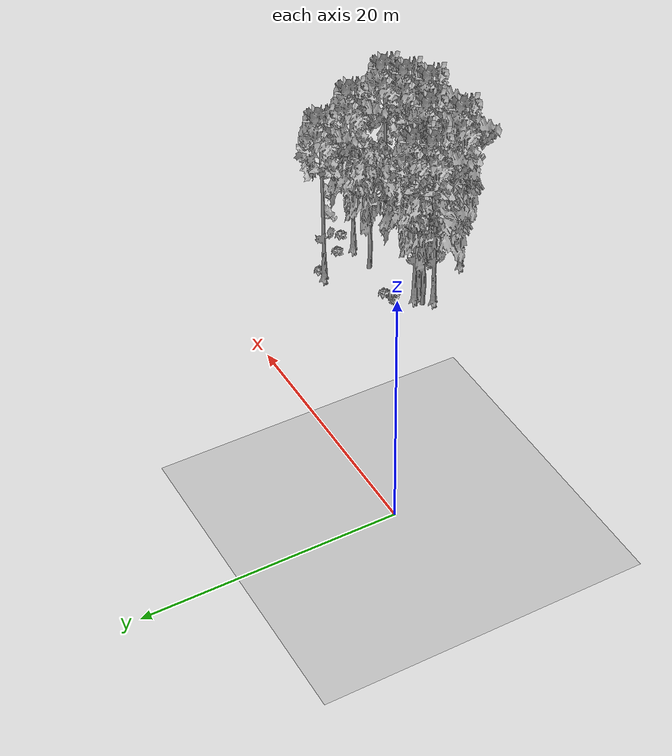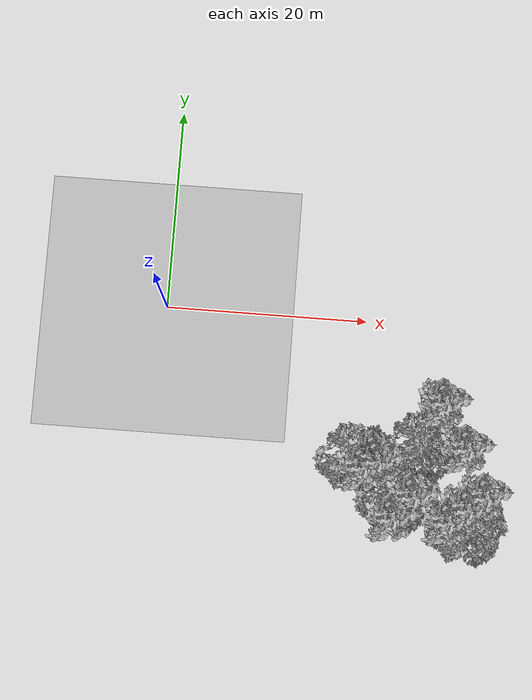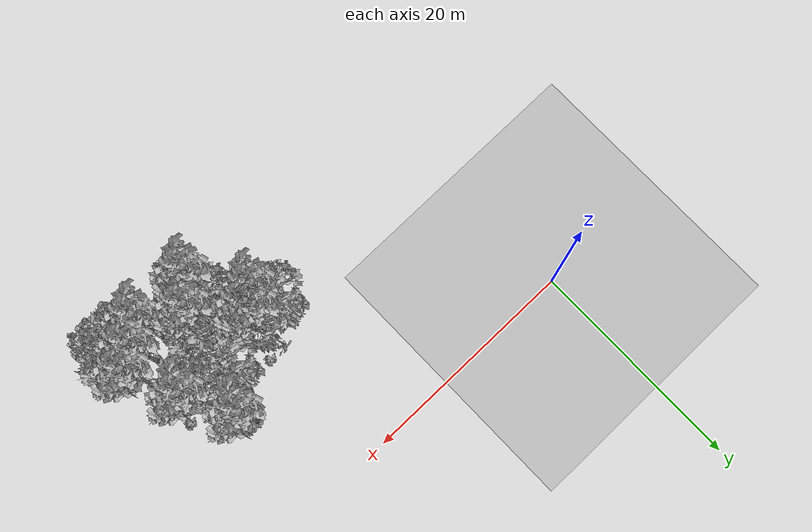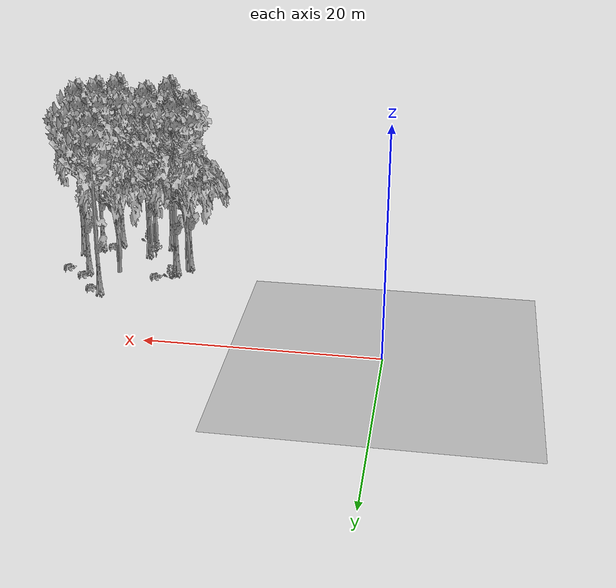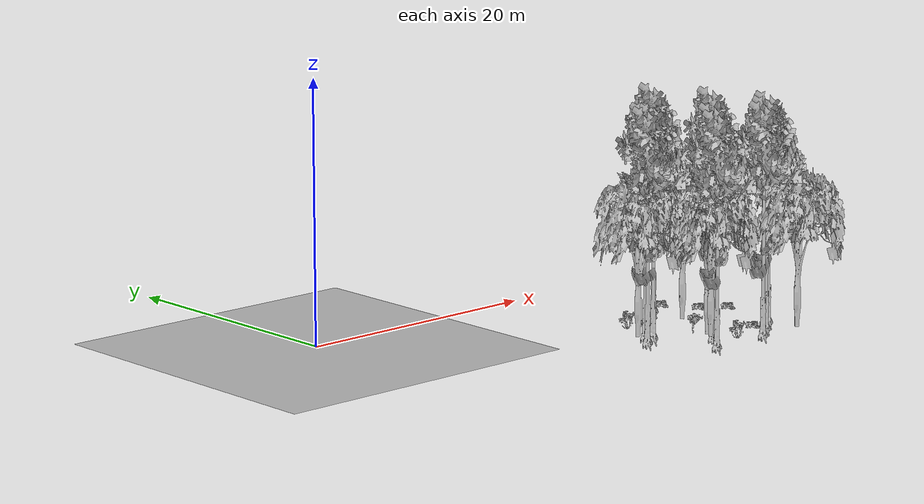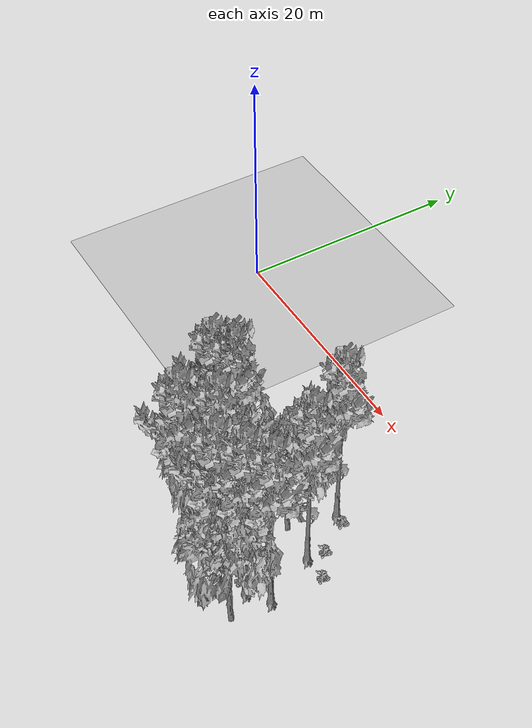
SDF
<sdf version="1.7">
 <world name="default">
  <model name="ground_plane">
   <static>1</static>
   <link name="link">
    <collision name="collision">
     <pose>-50 0 0 0 -0 0</pose>
     <geometry><plane><normal>0 0 1</normal><size>80 80</size></plane></geometry>
     <surface><contact><ode><min_depth>0.01</min_depth><max_vel>0</max_vel></ode></contact></surface>
    </collision>
    <visual name="grass">
     <cast_shadows>0</cast_shadows>
     <geometry>
      <mesh>
       <scale>0.46714285714285714 0.46714285714285714 0.1</scale>
       <uri>file://grass_plane/meshes/grass_plane.dae</uri>
      </mesh>
     </geometry>
    </visual>
   </link>
  </model>
  <model name="Tree 50">
   <static>1</static>
   <pose>23.375432868031204 -17.47456077057759 0 1.57079 -0 0</pose>
   <link name="link">
    <collision name="collision">
     <geometry><mesh><scale>3.5 5 3.5</scale><uri>model://tree_2/meshes/tree_2.obj</uri></mesh></geometry>
    </collision>
    <visual name="visual">
     <geometry><mesh><scale>3.5 5 3.5</scale><uri>model://tree_2/meshes/tree_2.obj</uri></mesh></geometry>
    </visual>
   </link>
  </model>
  <model name="Tree 141">
   <static>1</static>
   <pose>24.02685708414308 -17.16755280769504 0 1.57079 -0 0</pose>
   <link name="link">
    <collision name="collision">
     <geometry><mesh><scale>3.5 5 3.5</scale><uri>model://tree_9/meshes/tree_9.obj</uri></mesh></geometry>
    </collision>
    <visual name="visual">
     <geometry><mesh><scale>3.5 5 3.5</scale><uri>model://tree_9/meshes/tree_9.obj</uri></mesh></geometry>
    </visual>
   </link>
  </model>
  <model name="Tree 290">
   <static>1</static>
   <pose>20.408769202703468 -13.64539963736788 0 1.57079 -0 0</pose>
   <link name="link">
    <collision name="collision">
     <geometry><mesh><scale>3.5 5 3.5</scale><uri>model://tree_9/meshes/tree_9.obj</uri></mesh></geometry>
    </collision>
    <visual name="visual">
     <geometry><mesh><scale>3.5 5 3.5</scale><uri>model://tree_9/meshes/tree_9.obj</uri></mesh></geometry>
    </visual>
   </link>
  </model>
  <model name="Tree 294">
   <static>1</static>
   <pose>19.350011252296703 -13.890392780167417 0 1.57079 -0 0</pose>
   <link name="link">
    <collision name="collision">
     <geometry><mesh><scale>3.5 5 3.5</scale><uri>model://tree_2/meshes/tree_2.obj</uri></mesh></geometry>
    </collision>
    <visual name="visual">
     <geometry><mesh><scale>3.5 5 3.5</scale><uri>model://tree_2/meshes/tree_2.obj</uri></mesh></geometry>
    </visual>
   </link>
  </model>
  <model name="Tree 295">
   <static>1</static>
   <pose>26.437407888550965 -8.598830842433376 0 1.57079 -0 0</pose>
   <link name="link">
    <collision name="collision">
     <geometry><mesh><scale>3.5 5 3.5</scale><uri>model://tree_9/meshes/tree_9.obj</uri></mesh></geometry>
    </collision>
    <visual name="visual">
     <geometry><mesh><scale>3.5 5 3.5</scale><uri>model://tree_9/meshes/tree_9.obj</uri></mesh></geometry>
    </visual>
   </link>
  </model>
  <model name="Tree 299">
   <static>1</static>
   <pose>28.67347686791969 -12.583960751974317 0 1.57079 -0 0</pose>
   <link name="link">
    <collision name="collision">
     <geometry><mesh><scale>3.5 5 3.5</scale><uri>model://tree_9/meshes/tree_9.obj</uri></mesh></geometry>
    </collision>
    <visual name="visual">
     <geometry><mesh><scale>3.5 5 3.5</scale><uri>model://tree_9/meshes/tree_9.obj</uri></mesh></geometry>
    </visual>
   </link>
  </model>
  <model name="Tree 355">
   <static>1</static>
   <pose>27.283983587039216 -19.17087206742898 0 1.57079 -0 0</pose>
   <link name="link">
    <collision name="collision">
     <geometry><mesh><scale>3.5 5 3.5</scale><uri>model://tree_9/meshes/tree_9.obj</uri></mesh></geometry>
    </collision>
    <visual name="visual">
     <geometry><mesh><scale>3.5 5 3.5</scale><uri>model://tree_9/meshes/tree_9.obj</uri></mesh></geometry>
    </visual>
   </link>
  </model>
  <model name="Tree 377">
   <static>1</static>
   <pose>23.698576145258542 -16.82605889972649 0 1.57079 -0 0</pose>
   <link name="link">
    <collision name="collision">
     <geometry><mesh><scale>3.5 5 3.5</scale><uri>model://tree_2/meshes/tree_2.obj</uri></mesh></geometry>
    </collision>
    <visual name="visual">
     <geometry><mesh><scale>3.5 5 3.5</scale><uri>model://tree_2/meshes/tree_2.obj</uri></mesh></geometry>
    </visual>
   </link>
  </model>
  <model name="Tree 415">
   <static>1</static>
   <pose>20.669464997954385 -14.21290636307819 0 1.57079 -0 0</pose>
   <link name="link">
    <collision name="collision">
     <geometry><mesh><scale>3.5 5 3.5</scale><uri>model://tree_9/meshes/tree_9.obj</uri></mesh></geometry>
    </collision>
    <visual name="visual">
     <geometry><mesh><scale>3.5 5 3.5</scale><uri>model://tree_9/meshes/tree_9.obj</uri></mesh></geometry>
    </visual>
   </link>
  </model>
  <model name="Tree 463">
   <static>1</static>
   <pose>30.4888722942124 -16.73496729167617 0 1.57079 -0 0</pose>
   <link name="link">
    <collision name="collision">
     <geometry><mesh><scale>3.5 5 3.5</scale><uri>model://tree_9/meshes/tree_9.obj</uri></mesh></geometry>
    </collision>
    <visual name="visual">
     <geometry><mesh><scale>3.5 5 3.5</scale><uri>model://tree_9/meshes/tree_9.obj</uri></mesh></geometry>
    </visual>
   </link>
  </model>
  <model name="Tree 471">
   <static>1</static>
   <pose>22.287172465605508 -19.19419460813195 0 1.57079 -0 0</pose>
   <link name="link">
    <collision name="collision">
     <geometry><mesh><scale>3.5 5 3.5</scale><uri>model://tree_9/meshes/tree_9.obj</uri></mesh></geometry>
    </collision>
    <visual name="visual">
     <geometry><mesh><scale>3.5 5 3.5</scale><uri>model://tree_9/meshes/tree_9.obj</uri></mesh></geometry>
    </visual>
   </link>
  </model>
  <model name="Tree 551">
   <static>1</static>
   <pose>19.410352376933105 -14.873148143939225 0 1.57079 -0 0</pose>
   <link name="link">
    <collision name="collision">
     <geometry><mesh><scale>3.5 5 3.5</scale><uri>model://tree_9/meshes/tree_9.obj</uri></mesh></geometry>
    </collision>
    <visual name="visual">
     <geometry><mesh><scale>3.5 5 3.5</scale><uri>model://tree_9/meshes/tree_9.obj</uri></mesh></geometry>
    </visual>
   </link>
  </model>
  <model name="Tree 567">
   <static>1</static>
   <pose>30.20143721185225 -19.885636947367466 0 1.57079 -0 0</pose>
   <link name="link">
    <collision name="collision">
     <geometry><mesh><scale>3.5 5 3.5</scale><uri>model://tree_2/meshes/tree_2.obj</uri></mesh></geometry>
    </collision>
    <visual name="visual">
     <geometry><mesh><scale>3.5 5 3.5</scale><uri>model://tree_2/meshes/tree_2.obj</uri></mesh></geometry>
    </visual>
   </link>
  </model>
  <model name="Tree 606">
   <static>1</static>
   <pose>25.557575873165206 -12.440037493307365 0 1.57079 -0 0</pose>
   <link name="link">
    <collision name="collision">
     <geometry><mesh><scale>3.5 5 3.5</scale><uri>model://tree_2/meshes/tree_2.obj</uri></mesh></geometry>
    </collision>
    <visual name="visual">
     <geometry><mesh><scale>3.5 5 3.5</scale><uri>model://tree_2/meshes/tree_2.obj</uri></mesh></geometry>
    </visual>
   </link>
  </model>
  <model name="Tree 618">
   <static>1</static>
   <pose>28.942934506064688 -17.93342898196375 0 1.57079 -0 0</pose>
   <link name="link">
    <collision name="collision">
     <geometry><mesh><scale>3.5 5 3.5</scale><uri>model://tree_9/meshes/tree_9.obj</uri></mesh></geometry>
    </collision>
    <visual name="visual">
     <geometry><mesh><scale>3.5 5 3.5</scale><uri>model://tree_9/meshes/tree_9.obj</uri></mesh></geometry>
    </visual>
   </link>
  </model>
  <model name="Bush 57">
   <static>1</static>
   <pose>24.525240893013688 -19.231546960138736 0 1.57079 -0 0</pose>
   <link name="link">
    <collision name="collision">
     <geometry><mesh><scale>2 2 2</scale><uri>model://bush_4/meshes/bush_4.obj</uri></mesh></geometry>
     <surface><contact><collide_without_contact>false</collide_without_contact></contact></surface>
    </collision>
    <visual name="visual">
     <geometry><mesh><scale>2 2 2</scale><uri>model://bush_4/meshes/bush_4.obj</uri></mesh></geometry>
    </visual>
   </link>
  </model>
  <model name="Bush 151">
   <static>1</static>
   <pose>20.44767252642872 -11.800239501985725 0 1.57079 -0 0</pose>
   <link name="link">
    <collision name="collision">
     <geometry><mesh><scale>2 2 2</scale><uri>model://bush_4/meshes/bush_4.obj</uri></mesh></geometry>
     <surface><contact><collide_without_contact>false</collide_without_contact></contact></surface>
    </collision>
    <visual name="visual">
     <geometry><mesh><scale>2 2 2</scale><uri>model://bush_4/meshes/bush_4.obj</uri></mesh></geometry>
    </visual>
   </link>
  </model>
  <model name="Bush 167">
   <static>1</static>
   <pose>28.768112161864096 -11.158128112771362 0 1.57079 -0 0</pose>
   <link name="link">
    <collision name="collision">
     <geometry><mesh><scale>2 2 2</scale><uri>model://bush_2/meshes/bush_2.obj</uri></mesh></geometry>
     <surface><contact><collide_without_contact>false</collide_without_contact></contact></surface>
    </collision>
    <visual name="visual">
     <geometry><mesh><scale>2 2 2</scale><uri>model://bush_2/meshes/bush_2.obj</uri></mesh></geometry>
    </visual>
   </link>
  </model>
  <model name="Bush 256">
   <static>1</static>
   <pose>23.09864444905962 -16.022984664119278 0 1.57079 -0 0</pose>
   <link name="link">
    <collision name="collision">
     <geometry><mesh><scale>2 2 2</scale><uri>model://bush_5/meshes/bush_5.obj</uri></mesh></geometry>
     <surface><contact><collide_without_contact>false</collide_without_contact></contact></surface>
    </collision>
    <visual name="visual">
     <geometry><mesh><scale>2 2 2</scale><uri>model://bush_5/meshes/bush_5.obj</uri></mesh></geometry>
    </visual>
   </link>
  </model>
  <model name="Bush 416">
   <static>1</static>
   <pose>27.220752487247523 -8.64307928824995 0 1.57079 -0 0</pose>
   <link name="link">
    <collision name="collision">
     <geometry><mesh><scale>2 2 2</scale><uri>model://bush_2/meshes/bush_2.obj</uri></mesh></geometry>
     <surface><contact><collide_without_contact>false</collide_without_contact></contact></surface>
    </collision>
    <visual name="visual">
     <geometry><mesh><scale>2 2 2</scale><uri>model://bush_2/meshes/bush_2.obj</uri></mesh></geometry>
    </visual>
   </link>
  </model>
  <model name="Bush 500">
   <static>1</static>
   <pose>27.750470138223818 -17.70036406305664 0 1.57079 -0 0</pose>
   <link name="link">
    <collision name="collision">
     <geometry><mesh><scale>2 2 2</scale><uri>model://bush_2/meshes/bush_2.obj</uri></mesh></geometry>
     <surface><contact><collide_without_contact>false</collide_without_contact></contact></surface>
    </collision>
    <visual name="visual">
     <geometry><mesh><scale>2 2 2</scale><uri>model://bush_2/meshes/bush_2.obj</uri></mesh></geometry>
    </visual>
   </link>
  </model>
  <model name="Bush 530">
   <static>1</static>
   <pose>30.570470027441317 -12.49492337371608 0 1.57079 -0 0</pose>
   <link name="link">
    <collision name="collision">
     <geometry><mesh><scale>2 2 2</scale><uri>model://bush_2/meshes/bush_2.obj</uri></mesh></geometry>
     <surface><contact><collide_without_contact>false</collide_without_contact></contact></surface>
    </collision>
    <visual name="visual">
     <geometry><mesh><scale>2 2 2</scale><uri>model://bush_2/meshes/bush_2.obj</uri></mesh></geometry>
    </visual>
   </link>
  </model>
  <model name="Bush 624">
   <static>1</static>
   <pose>22.019497785783358 -11.821504286206633 0 1.57079 -0 0</pose>
   <link name="link">
    <collision name="collision">
     <geometry><mesh><scale>2 2 2</scale><uri>model://bush_2/meshes/bush_2.obj</uri></mesh></geometry>
     <surface><contact><collide_without_contact>false</collide_without_contact></contact></surface>
    </collision>
    <visual name="visual">
     <geometry><mesh><scale>2 2 2</scale><uri>model://bush_2/meshes/bush_2.obj</uri></mesh></geometry>
    </visual>
   </link>
  </model>
 </world>
</sdf>
